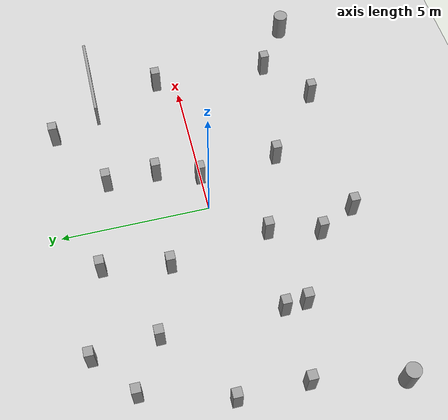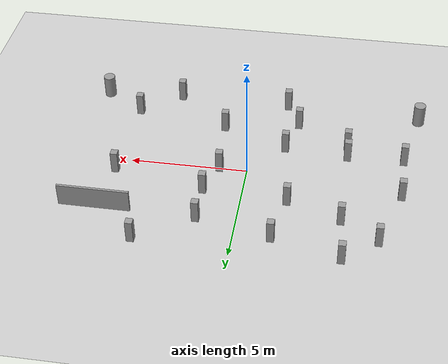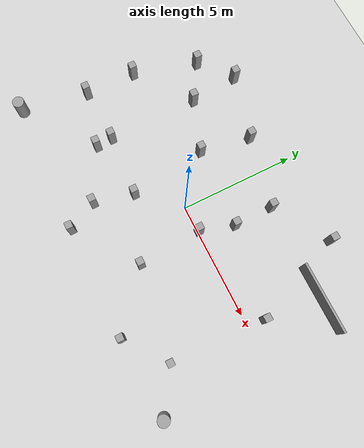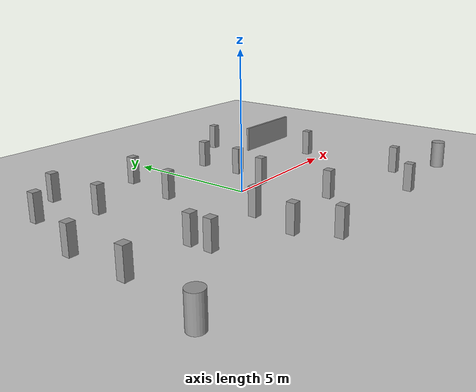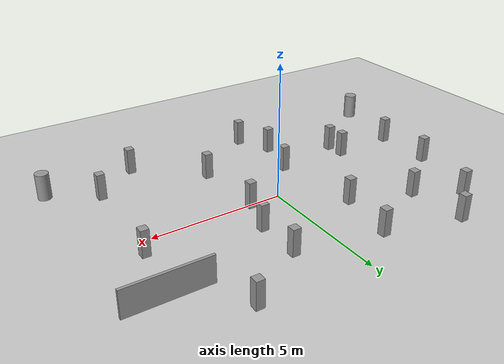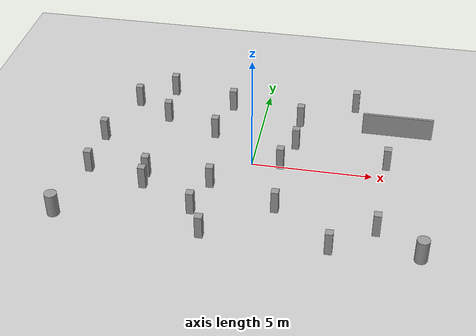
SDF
<sdf version="1.7">
 <world name="default">
  <model name="ground_plane">
   <static>1</static>
   <link name="link">
    <collision name="collision">
     <geometry><plane><normal>0 0 1</normal><size>100 100</size></plane></geometry>
     <surface>
      <contact><collide_bitmask>65535</collide_bitmask></contact>
      <friction><ode><mu>100</mu><mu2>50</mu2></ode></friction>
     </surface>
    </collision>
    <visual name="visual">
     <cast_shadows>0</cast_shadows>
     <geometry><plane><normal>0 0 1</normal><size>100 100</size></plane></geometry>
     <material>
      <script><uri>file://media/materials/scripts/gazebo.material</uri><name>Gazebo/Grey</name></script>
     </material>
    </visual>
   </link>
  </model>
  <model name="model_people">
   <link name="link_1">
    <inertial>
     <mass>1000</mass>
     <inertia><ixx>1666.67</ixx><ixy>0</ixy><ixz>0</ixz><iyy>1666.67</iyy><iyz>0</iyz><izz>1666.67</izz></inertia>
    </inertial>
    <pose>5.87565 3.29526 0 0 -0 0</pose>
    <visual name="visual">
     <geometry><box><size>3 0.1 1</size></box></geometry>
     <material>
      <lighting>1</lighting>
      <script><uri>file://media/materials/scripts/gazebo.material</uri><name>Gazebo/Grey</name></script>
      <shader type="pixel"><normal_map>__default__</normal_map></shader>
      <ambient>0.3 0.3 0.3 1</ambient>
      <diffuse>0.7 0.7 0.7 1</diffuse>
      <specular>0.01 0.01 0.01 1</specular>
      <emissive>0 0 0 1</emissive>
     </material>
    </visual>
    <collision name="collision">
     <geometry><box><size>3 0.1 1</size></box></geometry>
     <surface>
      <friction>
       <ode><mu>1</mu><mu2>1</mu2><fdir1>0 0 0</fdir1><slip1>1</slip1><slip2>1</slip2></ode>
       <torsional>
        <coefficient>1</coefficient>
        <patch_radius>0</patch_radius>
        <surface_radius>0</surface_radius>
        <use_patch_radius>1</use_patch_radius>
        <ode><slip>0</slip></ode>
       </torsional>
      </friction>
      <bounce><restitution_coefficient>0</restitution_coefficient><threshold>1e+06</threshold></bounce>
      <contact>
       <collide_without_contact>0</collide_without_contact>
       <collide_without_contact_bitmask>1</collide_without_contact_bitmask>
       <collide_bitmask>1</collide_bitmask>
       <ode>
        <soft_cfm>0</soft_cfm>
        <soft_erp>0.2</soft_erp>
        <kp>1e+13</kp>
        <kd>1</kd>
        <max_vel>0.01</max_vel>
        <min_depth>0</min_depth>
       </ode>
       <bullet>
        <split_impulse>1</split_impulse>
        <split_impulse_penetration_threshold>-0.01</split_impulse_penetration_threshold>
        <soft_cfm>0</soft_cfm>
        <soft_erp>0.2</soft_erp>
        <kp>1e+13</kp>
        <kd>1</kd>
       </bullet>
      </contact>
     </surface>
    </collision>
   </link>
   <link name="link_3">
    <inertial>
     <mass>1000</mass>
     <inertia><ixx>1666.67</ixx><ixy>0</ixy><ixz>0</ixz><iyy>1666.67</iyy><iyz>0</iyz><izz>1666.67</izz></inertia>
    </inertial>
    <pose>1.41254 -2.50014 0 0 -0 0</pose>
    <visual name="visual">
     <geometry><box><size>0.3 0.3 1</size></box></geometry>
     <material>
      <lighting>1</lighting>
      <script><uri>file://media/materials/scripts/gazebo.material</uri><name>Gazebo/Grey</name></script>
      <shader type="pixel"><normal_map>__default__</normal_map></shader>
      <ambient>0.3 0.3 0.3 1</ambient>
      <diffuse>0.7 0.7 0.7 1</diffuse>
      <specular>0.01 0.01 0.01 1</specular>
      <emissive>0 0 0 1</emissive>
     </material>
    </visual>
    <collision name="collision">
     <geometry><box><size>0.3 0.3 1</size></box></geometry>
     <surface>
      <friction>
       <ode><mu>1</mu><mu2>1</mu2><fdir1>0 0 0</fdir1><slip1>1</slip1><slip2>1</slip2></ode>
       <torsional>
        <coefficient>1</coefficient>
        <patch_radius>0</patch_radius>
        <surface_radius>0</surface_radius>
        <use_patch_radius>1</use_patch_radius>
        <ode><slip>0</slip></ode>
       </torsional>
      </friction>
      <bounce><restitution_coefficient>0</restitution_coefficient><threshold>1e+06</threshold></bounce>
      <contact>
       <collide_without_contact>0</collide_without_contact>
       <collide_without_contact_bitmask>1</collide_without_contact_bitmask>
       <collide_bitmask>1</collide_bitmask>
       <ode>
        <soft_cfm>0</soft_cfm>
        <soft_erp>0.2</soft_erp>
        <kp>1e+13</kp>
        <kd>1</kd>
        <max_vel>0.01</max_vel>
        <min_depth>0</min_depth>
       </ode>
       <bullet>
        <split_impulse>1</split_impulse>
        <split_impulse_penetration_threshold>-0.01</split_impulse_penetration_threshold>
        <soft_cfm>0</soft_cfm>
        <soft_erp>0.2</soft_erp>
        <kp>1e+13</kp>
        <kd>1</kd>
       </bullet>
      </contact>
     </surface>
    </collision>
   </link>
   <link name="link_3_clone">
    <inertial>
     <mass>1</mass>
     <inertia><ixx>1666.67</ixx><ixy>0</ixy><ixz>0</ixz><iyy>1666.67</iyy><iyz>0</iyz><izz>1666.67</izz></inertia>
    </inertial>
    <pose>5.41108 -3.14206 0 0 -0 0</pose>
    <visual name="visual">
     <geometry><box><size>0.3 0.3 1</size></box></geometry>
     <material>
      <lighting>1</lighting>
      <script><uri>file://media/materials/scripts/gazebo.material</uri><name>Gazebo/Grey</name></script>
      <shader type="pixel"><normal_map>__default__</normal_map></shader>
      <ambient>0.3 0.3 0.3 1</ambient>
      <diffuse>0.7 0.7 0.7 1</diffuse>
      <specular>0.01 0.01 0.01 1</specular>
      <emissive>0 0 0 1</emissive>
     </material>
    </visual>
    <collision name="collision">
     <geometry><box><size>0.3 0.3 1</size></box></geometry>
     <surface>
      <friction>
       <ode><mu>1</mu><mu2>1</mu2><fdir1>0 0 0</fdir1><slip1>1</slip1><slip2>1</slip2></ode>
       <torsional>
        <coefficient>1</coefficient>
        <patch_radius>0</patch_radius>
        <surface_radius>0</surface_radius>
        <use_patch_radius>1</use_patch_radius>
        <ode><slip>0</slip></ode>
       </torsional>
      </friction>
      <bounce><restitution_coefficient>0</restitution_coefficient><threshold>1e+06</threshold></bounce>
      <contact>
       <collide_without_contact>0</collide_without_contact>
       <collide_without_contact_bitmask>1</collide_without_contact_bitmask>
       <collide_bitmask>1</collide_bitmask>
       <ode>
        <soft_cfm>0</soft_cfm>
        <soft_erp>0.2</soft_erp>
        <kp>1e+13</kp>
        <kd>1</kd>
        <max_vel>0.01</max_vel>
        <min_depth>0</min_depth>
       </ode>
       <bullet>
        <split_impulse>1</split_impulse>
        <split_impulse_penetration_threshold>-0.01</split_impulse_penetration_threshold>
        <soft_cfm>0</soft_cfm>
        <soft_erp>0.2</soft_erp>
        <kp>1e+13</kp>
        <kd>1</kd>
       </bullet>
      </contact>
     </surface>
    </collision>
   </link>
   <link name="link_3_clone_0">
    <inertial>
     <mass>1000</mass>
     <inertia><ixx>1666.67</ixx><ixy>0</ixy><ixz>0</ixz><iyy>1666.67</iyy><iyz>0</iyz><izz>1666.67</izz></inertia>
    </inertial>
    <pose>1.64513 3.40116 0 0 -0 0</pose>
    <visual name="visual">
     <geometry><box><size>0.3 0.3 1</size></box></geometry>
     <material>
      <lighting>1</lighting>
      <script><uri>file://media/materials/scripts/gazebo.material</uri><name>Gazebo/Grey</name></script>
      <shader type="pixel"><normal_map>__default__</normal_map></shader>
      <ambient>0.3 0.3 0.3 1</ambient>
      <diffuse>0.7 0.7 0.7 1</diffuse>
      <specular>0.01 0.01 0.01 1</specular>
      <emissive>0 0 0 1</emissive>
     </material>
    </visual>
    <collision name="collision">
     <geometry><box><size>0.3 0.3 1</size></box></geometry>
     <surface>
      <friction>
       <ode><mu>1</mu><mu2>1</mu2><fdir1>0 0 0</fdir1><slip1>1</slip1><slip2>1</slip2></ode>
       <torsional>
        <coefficient>1</coefficient>
        <patch_radius>0</patch_radius>
        <surface_radius>0</surface_radius>
        <use_patch_radius>1</use_patch_radius>
        <ode><slip>0</slip></ode>
       </torsional>
      </friction>
      <bounce><restitution_coefficient>0</restitution_coefficient><threshold>1e+06</threshold></bounce>
      <contact>
       <collide_without_contact>0</collide_without_contact>
       <collide_without_contact_bitmask>1</collide_without_contact_bitmask>
       <collide_bitmask>1</collide_bitmask>
       <ode>
        <soft_cfm>0</soft_cfm>
        <soft_erp>0.2</soft_erp>
        <kp>1e+13</kp>
        <kd>1</kd>
        <max_vel>0.01</max_vel>
        <min_depth>0</min_depth>
       </ode>
       <bullet>
        <split_impulse>1</split_impulse>
        <split_impulse_penetration_threshold>-0.01</split_impulse_penetration_threshold>
        <soft_cfm>0</soft_cfm>
        <soft_erp>0.2</soft_erp>
        <kp>1e+13</kp>
        <kd>1</kd>
       </bullet>
      </contact>
     </surface>
    </collision>
   </link>
   <link name="link_3_clone_1">
    <inertial>
     <mass>1000</mass>
     <inertia><ixx>1666.67</ixx><ixy>0</ixy><ixz>0</ixz><iyy>1666.67</iyy><iyz>0</iyz><izz>1666.67</izz></inertia>
    </inertial>
    <pose>-1.40268 -1.44307 0 0 -0 0</pose>
    <visual name="visual">
     <geometry><box><size>0.3 0.3 1</size></box></geometry>
     <material>
      <lighting>1</lighting>
      <script><uri>file://media/materials/scripts/gazebo.material</uri><name>Gazebo/Grey</name></script>
      <shader type="pixel"><normal_map>__default__</normal_map></shader>
      <ambient>0.3 0.3 0.3 1</ambient>
      <diffuse>0.7 0.7 0.7 1</diffuse>
      <specular>0.01 0.01 0.01 1</specular>
      <emissive>0 0 0 1</emissive>
     </material>
    </visual>
    <collision name="collision">
     <geometry><box><size>0.3 0.3 1</size></box></geometry>
     <surface>
      <friction>
       <ode><mu>1</mu><mu2>1</mu2><fdir1>0 0 0</fdir1><slip1>1</slip1><slip2>1</slip2></ode>
       <torsional>
        <coefficient>1</coefficient>
        <patch_radius>0</patch_radius>
        <surface_radius>0</surface_radius>
        <use_patch_radius>1</use_patch_radius>
        <ode><slip>0</slip></ode>
       </torsional>
      </friction>
      <bounce><restitution_coefficient>0</restitution_coefficient><threshold>1e+06</threshold></bounce>
      <contact>
       <collide_without_contact>0</collide_without_contact>
       <collide_without_contact_bitmask>1</collide_without_contact_bitmask>
       <collide_bitmask>1</collide_bitmask>
       <ode>
        <soft_cfm>0</soft_cfm>
        <soft_erp>0.2</soft_erp>
        <kp>1e+13</kp>
        <kd>1</kd>
        <max_vel>0.01</max_vel>
        <min_depth>0</min_depth>
       </ode>
       <bullet>
        <split_impulse>1</split_impulse>
        <split_impulse_penetration_threshold>-0.01</split_impulse_penetration_threshold>
        <soft_cfm>0</soft_cfm>
        <soft_erp>0.2</soft_erp>
        <kp>1e+13</kp>
        <kd>1</kd>
       </bullet>
      </contact>
     </surface>
    </collision>
   </link>
   <link name="link_3_clone_2">
    <inertial>
     <mass>1000</mass>
     <inertia><ixx>1666.67</ixx><ixy>0</ixy><ixz>0</ixz><iyy>1666.67</iyy><iyz>0</iyz><izz>1666.67</izz></inertia>
    </inertial>
    <pose>-1.8757 1.90285 0 0 -0 0</pose>
    <visual name="visual">
     <geometry><box><size>0.3 0.3 1</size></box></geometry>
     <material>
      <lighting>1</lighting>
      <script><uri>file://media/materials/scripts/gazebo.material</uri><name>Gazebo/Grey</name></script>
      <shader type="pixel"><normal_map>__default__</normal_map></shader>
      <ambient>0.3 0.3 0.3 1</ambient>
      <diffuse>0.7 0.7 0.7 1</diffuse>
      <specular>0.01 0.01 0.01 1</specular>
      <emissive>0 0 0 1</emissive>
     </material>
    </visual>
    <collision name="collision">
     <geometry><box><size>0.3 0.3 1</size></box></geometry>
     <surface>
      <friction>
       <ode><mu>1</mu><mu2>1</mu2><fdir1>0 0 0</fdir1><slip1>1</slip1><slip2>1</slip2></ode>
       <torsional>
        <coefficient>1</coefficient>
        <patch_radius>0</patch_radius>
        <surface_radius>0</surface_radius>
        <use_patch_radius>1</use_patch_radius>
        <ode><slip>0</slip></ode>
       </torsional>
      </friction>
      <bounce><restitution_coefficient>0</restitution_coefficient><threshold>1e+06</threshold></bounce>
      <contact>
       <collide_without_contact>0</collide_without_contact>
       <collide_without_contact_bitmask>1</collide_without_contact_bitmask>
       <collide_bitmask>1</collide_bitmask>
       <ode>
        <soft_cfm>0</soft_cfm>
        <soft_erp>0.2</soft_erp>
        <kp>1e+13</kp>
        <kd>1</kd>
        <max_vel>0.01</max_vel>
        <min_depth>0</min_depth>
       </ode>
       <bullet>
        <split_impulse>1</split_impulse>
        <split_impulse_penetration_threshold>-0.01</split_impulse_penetration_threshold>
        <soft_cfm>0</soft_cfm>
        <soft_erp>0.2</soft_erp>
        <kp>1e+13</kp>
        <kd>1</kd>
       </bullet>
      </contact>
     </surface>
    </collision>
   </link>
   <link name="link_3_clone_2_clone">
    <inertial>
     <mass>1000</mass>
     <inertia><ixx>1666.67</ixx><ixy>0</ixy><ixz>0</ixz><iyy>1666.67</iyy><iyz>0</iyz><izz>1666.67</izz></inertia>
    </inertial>
    <pose>-4.3502 4.85297 0 0 -0 0</pose>
    <visual name="visual">
     <geometry><box><size>0.3 0.3 1</size></box></geometry>
     <material>
      <lighting>1</lighting>
      <script><uri>file://media/materials/scripts/gazebo.material</uri><name>Gazebo/Grey</name></script>
      <shader type="pixel"><normal_map>__default__</normal_map></shader>
      <ambient>0.3 0.3 0.3 1</ambient>
      <diffuse>0.7 0.7 0.7 1</diffuse>
      <specular>0.01 0.01 0.01 1</specular>
      <emissive>0 0 0 1</emissive>
     </material>
    </visual>
    <collision name="collision">
     <geometry><box><size>0.3 0.3 1</size></box></geometry>
     <surface>
      <friction>
       <ode><mu>1</mu><mu2>1</mu2><fdir1>0 0 0</fdir1><slip1>1</slip1><slip2>1</slip2></ode>
       <torsional>
        <coefficient>1</coefficient>
        <patch_radius>0</patch_radius>
        <surface_radius>0</surface_radius>
        <use_patch_radius>1</use_patch_radius>
        <ode><slip>0</slip></ode>
       </torsional>
      </friction>
      <bounce><restitution_coefficient>0</restitution_coefficient><threshold>1e+06</threshold></bounce>
      <contact>
       <collide_without_contact>0</collide_without_contact>
       <collide_without_contact_bitmask>1</collide_without_contact_bitmask>
       <collide_bitmask>1</collide_bitmask>
       <ode>
        <soft_cfm>0</soft_cfm>
        <soft_erp>0.2</soft_erp>
        <kp>1e+13</kp>
        <kd>1</kd>
        <max_vel>0.01</max_vel>
        <min_depth>0</min_depth>
       </ode>
       <bullet>
        <split_impulse>1</split_impulse>
        <split_impulse_penetration_threshold>-0.01</split_impulse_penetration_threshold>
        <soft_cfm>0</soft_cfm>
        <soft_erp>0.2</soft_erp>
        <kp>1e+13</kp>
        <kd>1</kd>
       </bullet>
      </contact>
     </surface>
    </collision>
   </link>
   <link name="link_3_clone_2_clone_0">
    <inertial>
     <mass>1000</mass>
     <inertia><ixx>1666.67</ixx><ixy>0</ixy><ixz>0</ixz><iyy>1666.67</iyy><iyz>0</iyz><izz>1666.67</izz></inertia>
    </inertial>
    <pose>-4.06604 -1.95479 0 0 -0 0</pose>
    <visual name="visual">
     <geometry><box><size>0.3 0.3 1</size></box></geometry>
     <material>
      <lighting>1</lighting>
      <script><uri>file://media/materials/scripts/gazebo.material</uri><name>Gazebo/Grey</name></script>
      <shader type="pixel"><normal_map>__default__</normal_map></shader>
      <ambient>0.3 0.3 0.3 1</ambient>
      <diffuse>0.7 0.7 0.7 1</diffuse>
      <specular>0.01 0.01 0.01 1</specular>
      <emissive>0 0 0 1</emissive>
     </material>
    </visual>
    <collision name="collision">
     <geometry><box><size>0.3 0.3 1</size></box></geometry>
     <surface>
      <friction>
       <ode><mu>1</mu><mu2>1</mu2><fdir1>0 0 0</fdir1><slip1>1</slip1><slip2>1</slip2></ode>
       <torsional>
        <coefficient>1</coefficient>
        <patch_radius>0</patch_radius>
        <surface_radius>0</surface_radius>
        <use_patch_radius>1</use_patch_radius>
        <ode><slip>0</slip></ode>
       </torsional>
      </friction>
      <bounce><restitution_coefficient>0</restitution_coefficient><threshold>1e+06</threshold></bounce>
      <contact>
       <collide_without_contact>0</collide_without_contact>
       <collide_without_contact_bitmask>1</collide_without_contact_bitmask>
       <collide_bitmask>1</collide_bitmask>
       <ode>
        <soft_cfm>0</soft_cfm>
        <soft_erp>0.2</soft_erp>
        <kp>1e+13</kp>
        <kd>1</kd>
        <max_vel>0.01</max_vel>
        <min_depth>0</min_depth>
       </ode>
       <bullet>
        <split_impulse>1</split_impulse>
        <split_impulse_penetration_threshold>-0.01</split_impulse_penetration_threshold>
        <soft_cfm>0</soft_cfm>
        <soft_erp>0.2</soft_erp>
        <kp>1e+13</kp>
        <kd>1</kd>
       </bullet>
      </contact>
     </surface>
    </collision>
   </link>
   <link name="link_3_clone_2_clone_1">
    <inertial>
     <mass>1000</mass>
     <inertia><ixx>1666.67</ixx><ixy>0</ixy><ixz>0</ixz><iyy>1666.67</iyy><iyz>0</iyz><izz>1666.67</izz></inertia>
    </inertial>
    <pose>-5.73259 3.6978 0 0 -0 0</pose>
    <visual name="visual">
     <geometry><box><size>0.3 0.3 1</size></box></geometry>
     <material>
      <lighting>1</lighting>
      <script><uri>file://media/materials/scripts/gazebo.material</uri><name>Gazebo/Grey</name></script>
      <shader type="pixel"><normal_map>__default__</normal_map></shader>
      <ambient>0.3 0.3 0.3 1</ambient>
      <diffuse>0.7 0.7 0.7 1</diffuse>
      <specular>0.01 0.01 0.01 1</specular>
      <emissive>0 0 0 1</emissive>
     </material>
    </visual>
    <collision name="collision">
     <geometry><box><size>0.3 0.3 1</size></box></geometry>
     <surface>
      <friction>
       <ode><mu>1</mu><mu2>1</mu2><fdir1>0 0 0</fdir1><slip1>1</slip1><slip2>1</slip2></ode>
       <torsional>
        <coefficient>1</coefficient>
        <patch_radius>0</patch_radius>
        <surface_radius>0</surface_radius>
        <use_patch_radius>1</use_patch_radius>
        <ode><slip>0</slip></ode>
       </torsional>
      </friction>
      <bounce><restitution_coefficient>0</restitution_coefficient><threshold>1e+06</threshold></bounce>
      <contact>
       <collide_without_contact>0</collide_without_contact>
       <collide_without_contact_bitmask>1</collide_without_contact_bitmask>
       <collide_bitmask>1</collide_bitmask>
       <ode>
        <soft_cfm>0</soft_cfm>
        <soft_erp>0.2</soft_erp>
        <kp>1e+13</kp>
        <kd>1</kd>
        <max_vel>0.01</max_vel>
        <min_depth>0</min_depth>
       </ode>
       <bullet>
        <split_impulse>1</split_impulse>
        <split_impulse_penetration_threshold>-0.01</split_impulse_penetration_threshold>
        <soft_cfm>0</soft_cfm>
        <soft_erp>0.2</soft_erp>
        <kp>1e+13</kp>
        <kd>1</kd>
       </bullet>
      </contact>
     </surface>
    </collision>
   </link>
   <link name="link_3_clone_2_clone_2">
    <inertial>
     <mass>1000</mass>
     <inertia><ixx>1666.67</ixx><ixy>0</ixy><ixz>0</ixz><iyy>1666.67</iyy><iyz>0</iyz><izz>1666.67</izz></inertia>
    </inertial>
    <pose>-6.53007 -1.31119 0 0 -0 0</pose>
    <visual name="visual">
     <geometry><box><size>0.3 0.3 1</size></box></geometry>
     <material>
      <lighting>1</lighting>
      <script><uri>file://media/materials/scripts/gazebo.material</uri><name>Gazebo/Grey</name></script>
      <shader type="pixel"><normal_map>__default__</normal_map></shader>
      <ambient>0.3 0.3 0.3 1</ambient>
      <diffuse>0.7 0.7 0.7 1</diffuse>
      <specular>0.01 0.01 0.01 1</specular>
      <emissive>0 0 0 1</emissive>
     </material>
    </visual>
    <collision name="collision">
     <geometry><box><size>0.3 0.3 1</size></box></geometry>
     <surface>
      <friction>
       <ode><mu>1</mu><mu2>1</mu2><fdir1>0 0 0</fdir1><slip1>1</slip1><slip2>1</slip2></ode>
       <torsional>
        <coefficient>1</coefficient>
        <patch_radius>0</patch_radius>
        <surface_radius>0</surface_radius>
        <use_patch_radius>1</use_patch_radius>
        <ode><slip>0</slip></ode>
       </torsional>
      </friction>
      <bounce><restitution_coefficient>0</restitution_coefficient><threshold>1e+06</threshold></bounce>
      <contact>
       <collide_without_contact>0</collide_without_contact>
       <collide_without_contact_bitmask>1</collide_without_contact_bitmask>
       <collide_bitmask>1</collide_bitmask>
       <ode>
        <soft_cfm>0</soft_cfm>
        <soft_erp>0.2</soft_erp>
        <kp>1e+13</kp>
        <kd>1</kd>
        <max_vel>0.01</max_vel>
        <min_depth>0</min_depth>
       </ode>
       <bullet>
        <split_impulse>1</split_impulse>
        <split_impulse_penetration_threshold>-0.01</split_impulse_penetration_threshold>
        <soft_cfm>0</soft_cfm>
        <soft_erp>0.2</soft_erp>
        <kp>1e+13</kp>
        <kd>1</kd>
       </bullet>
      </contact>
     </surface>
    </collision>
   </link>
   <link name="link_3_clone_2_clone_3">
    <inertial>
     <mass>1000</mass>
     <inertia><ixx>1666.67</ixx><ixy>0</ixy><ixz>0</ixz><iyy>1666.67</iyy><iyz>0</iyz><izz>1666.67</izz></inertia>
    </inertial>
    <pose>-1.18011 -4.42479 0 0 -0 0</pose>
    <visual name="visual">
     <geometry><box><size>0.3 0.3 1</size></box></geometry>
     <material>
      <lighting>1</lighting>
      <script><uri>file://media/materials/scripts/gazebo.material</uri><name>Gazebo/Grey</name></script>
      <shader type="pixel"><normal_map>__default__</normal_map></shader>
      <ambient>0.3 0.3 0.3 1</ambient>
      <diffuse>0.7 0.7 0.7 1</diffuse>
      <specular>0.01 0.01 0.01 1</specular>
      <emissive>0 0 0 1</emissive>
     </material>
    </visual>
    <collision name="collision">
     <geometry><box><size>0.3 0.3 1</size></box></geometry>
     <surface>
      <friction>
       <ode><mu>1</mu><mu2>1</mu2><fdir1>0 0 0</fdir1><slip1>1</slip1><slip2>1</slip2></ode>
       <torsional>
        <coefficient>1</coefficient>
        <patch_radius>0</patch_radius>
        <surface_radius>0</surface_radius>
        <use_patch_radius>1</use_patch_radius>
        <ode><slip>0</slip></ode>
       </torsional>
      </friction>
      <bounce><restitution_coefficient>0</restitution_coefficient><threshold>1e+06</threshold></bounce>
      <contact>
       <collide_without_contact>0</collide_without_contact>
       <collide_without_contact_bitmask>1</collide_without_contact_bitmask>
       <collide_bitmask>1</collide_bitmask>
       <ode>
        <soft_cfm>0</soft_cfm>
        <soft_erp>0.2</soft_erp>
        <kp>1e+13</kp>
        <kd>1</kd>
        <max_vel>0.01</max_vel>
        <min_depth>0</min_depth>
       </ode>
       <bullet>
        <split_impulse>1</split_impulse>
        <split_impulse_penetration_threshold>-0.01</split_impulse_penetration_threshold>
        <soft_cfm>0</soft_cfm>
        <soft_erp>0.2</soft_erp>
        <kp>1e+13</kp>
        <kd>1</kd>
       </bullet>
      </contact>
     </surface>
    </collision>
   </link>
   <link name="link_3_clone_3">
    <inertial>
     <mass>1000</mass>
     <inertia><ixx>1666.67</ixx><ixy>0</ixy><ixz>0</ixz><iyy>1666.67</iyy><iyz>0</iyz><izz>1666.67</izz></inertia>
    </inertial>
    <pose>1.21145 0.247128 0 0 -0 0</pose>
    <visual name="visual">
     <geometry><box><size>0.3 0.3 1</size></box></geometry>
     <material>
      <lighting>1</lighting>
      <script><uri>file://media/materials/scripts/gazebo.material</uri><name>Gazebo/Grey</name></script>
      <shader type="pixel"><normal_map>__default__</normal_map></shader>
      <ambient>0.3 0.3 0.3 1</ambient>
      <diffuse>0.7 0.7 0.7 1</diffuse>
      <specular>0.01 0.01 0.01 1</specular>
      <emissive>0 0 0 1</emissive>
     </material>
    </visual>
    <collision name="collision">
     <geometry><box><size>0.3 0.3 1</size></box></geometry>
     <surface>
      <friction>
       <ode><mu>1</mu><mu2>1</mu2><fdir1>0 0 0</fdir1><slip1>1</slip1><slip2>1</slip2></ode>
       <torsional>
        <coefficient>1</coefficient>
        <patch_radius>0</patch_radius>
        <surface_radius>0</surface_radius>
        <use_patch_radius>1</use_patch_radius>
        <ode><slip>0</slip></ode>
       </torsional>
      </friction>
      <bounce><restitution_coefficient>0</restitution_coefficient><threshold>1e+06</threshold></bounce>
      <contact>
       <collide_without_contact>0</collide_without_contact>
       <collide_without_contact_bitmask>1</collide_without_contact_bitmask>
       <collide_bitmask>1</collide_bitmask>
       <ode>
        <soft_cfm>0</soft_cfm>
        <soft_erp>0.2</soft_erp>
        <kp>1e+13</kp>
        <kd>1</kd>
        <max_vel>0.01</max_vel>
        <min_depth>0</min_depth>
       </ode>
       <bullet>
        <split_impulse>1</split_impulse>
        <split_impulse_penetration_threshold>-0.01</split_impulse_penetration_threshold>
        <soft_cfm>0</soft_cfm>
        <soft_erp>0.2</soft_erp>
        <kp>1e+13</kp>
        <kd>1</kd>
       </bullet>
      </contact>
     </surface>
    </collision>
   </link>
   <link name="link_3_clone_4">
    <inertial>
     <mass>1000</mass>
     <inertia><ixx>1666.67</ixx><ixy>0</ixy><ixz>0</ixz><iyy>1666.67</iyy><iyz>0</iyz><izz>1666.67</izz></inertia>
    </inertial>
    <pose>5.56661 0.940043 0 0 -0 0</pose>
    <visual name="visual">
     <geometry><box><size>0.3 0.3 1</size></box></geometry>
     <material>
      <lighting>1</lighting>
      <script><uri>file://media/materials/scripts/gazebo.material</uri><name>Gazebo/Grey</name></script>
      <shader type="pixel"><normal_map>__default__</normal_map></shader>
      <ambient>0.3 0.3 0.3 1</ambient>
      <diffuse>0.7 0.7 0.7 1</diffuse>
      <specular>0.01 0.01 0.01 1</specular>
      <emissive>0 0 0 1</emissive>
     </material>
    </visual>
    <collision name="collision">
     <geometry><box><size>0.3 0.3 1</size></box></geometry>
     <surface>
      <friction>
       <ode><mu>1</mu><mu2>1</mu2><fdir1>0 0 0</fdir1><slip1>1</slip1><slip2>1</slip2></ode>
       <torsional>
        <coefficient>1</coefficient>
        <patch_radius>0</patch_radius>
        <surface_radius>0</surface_radius>
        <use_patch_radius>1</use_patch_radius>
        <ode><slip>0</slip></ode>
       </torsional>
      </friction>
      <bounce><restitution_coefficient>0</restitution_coefficient><threshold>1e+06</threshold></bounce>
      <contact>
       <collide_without_contact>0</collide_without_contact>
       <collide_without_contact_bitmask>1</collide_without_contact_bitmask>
       <collide_bitmask>1</collide_bitmask>
       <ode>
        <soft_cfm>0</soft_cfm>
        <soft_erp>0.2</soft_erp>
        <kp>1e+13</kp>
        <kd>1</kd>
        <max_vel>0.01</max_vel>
        <min_depth>0</min_depth>
       </ode>
       <bullet>
        <split_impulse>1</split_impulse>
        <split_impulse_penetration_threshold>-0.01</split_impulse_penetration_threshold>
        <soft_cfm>0</soft_cfm>
        <soft_erp>0.2</soft_erp>
        <kp>1e+13</kp>
        <kd>1</kd>
       </bullet>
      </contact>
     </surface>
    </collision>
   </link>
   <link name="link_3_clone_5">
    <inertial>
     <mass>1000</mass>
     <inertia><ixx>1666.67</ixx><ixy>0</ixy><ixz>0</ixz><iyy>1666.67</iyy><iyz>0</iyz><izz>1666.67</izz></inertia>
    </inertial>
    <pose>3.96151 4.89158 0 0 -0 0</pose>
    <visual name="visual">
     <geometry><box><size>0.3 0.3 1</size></box></geometry>
     <material>
      <lighting>1</lighting>
      <script><uri>file://media/materials/scripts/gazebo.material</uri><name>Gazebo/Grey</name></script>
      <shader type="pixel"><normal_map>__default__</normal_map></shader>
      <ambient>0.3 0.3 0.3 1</ambient>
      <diffuse>0.7 0.7 0.7 1</diffuse>
      <specular>0.01 0.01 0.01 1</specular>
      <emissive>0 0 0 1</emissive>
     </material>
    </visual>
    <collision name="collision">
     <geometry><box><size>0.3 0.3 1</size></box></geometry>
     <surface>
      <friction>
       <ode><mu>1</mu><mu2>1</mu2><fdir1>0 0 0</fdir1><slip1>1</slip1><slip2>1</slip2></ode>
       <torsional>
        <coefficient>1</coefficient>
        <patch_radius>0</patch_radius>
        <surface_radius>0</surface_radius>
        <use_patch_radius>1</use_patch_radius>
        <ode><slip>0</slip></ode>
       </torsional>
      </friction>
      <bounce><restitution_coefficient>0</restitution_coefficient><threshold>1e+06</threshold></bounce>
      <contact>
       <collide_without_contact>0</collide_without_contact>
       <collide_without_contact_bitmask>1</collide_without_contact_bitmask>
       <collide_bitmask>1</collide_bitmask>
       <ode>
        <soft_cfm>0</soft_cfm>
        <soft_erp>0.2</soft_erp>
        <kp>1e+13</kp>
        <kd>1</kd>
        <max_vel>0.01</max_vel>
        <min_depth>0</min_depth>
       </ode>
       <bullet>
        <split_impulse>1</split_impulse>
        <split_impulse_penetration_threshold>-0.01</split_impulse_penetration_threshold>
        <soft_cfm>0</soft_cfm>
        <soft_erp>0.2</soft_erp>
        <kp>1e+13</kp>
        <kd>1</kd>
       </bullet>
      </contact>
     </surface>
    </collision>
   </link>
   <link name="link_4">
    <inertial>
     <mass>1000</mass>
     <inertia><ixx>1458.33</ixx><ixy>0</ixy><ixz>0</ixz><iyy>1458.33</iyy><iyz>0</iyz><izz>1250</izz></inertia>
    </inertial>
    <pose>-7.07269 -4.18386 0 0 -0 0</pose>
    <visual name="visual">
     <geometry><cylinder><radius>0.25</radius><length>1</length></cylinder></geometry>
     <material>
      <lighting>1</lighting>
      <script><uri>file://media/materials/scripts/gazebo.material</uri><name>Gazebo/Grey</name></script>
      <shader type="pixel"><normal_map>__default__</normal_map></shader>
      <ambient>0.3 0.3 0.3 1</ambient>
      <diffuse>0.7 0.7 0.7 1</diffuse>
      <specular>0.01 0.01 0.01 1</specular>
      <emissive>0 0 0 1</emissive>
     </material>
    </visual>
    <collision name="collision">
     <geometry><cylinder><radius>0.25</radius><length>1</length></cylinder></geometry>
     <surface>
      <friction>
       <ode><mu>1</mu><mu2>1</mu2><fdir1>0 0 0</fdir1><slip1>1</slip1><slip2>1</slip2></ode>
       <torsional>
        <coefficient>1</coefficient>
        <patch_radius>0</patch_radius>
        <surface_radius>0</surface_radius>
        <use_patch_radius>1</use_patch_radius>
        <ode><slip>0</slip></ode>
       </torsional>
      </friction>
      <bounce><restitution_coefficient>0</restitution_coefficient><threshold>1e+06</threshold></bounce>
      <contact>
       <collide_without_contact>0</collide_without_contact>
       <collide_without_contact_bitmask>1</collide_without_contact_bitmask>
       <collide_bitmask>1</collide_bitmask>
       <ode>
        <soft_cfm>0</soft_cfm>
        <soft_erp>0.2</soft_erp>
        <kp>1e+13</kp>
        <kd>1</kd>
        <max_vel>0.01</max_vel>
        <min_depth>0</min_depth>
       </ode>
       <bullet>
        <split_impulse>1</split_impulse>
        <split_impulse_penetration_threshold>-0.01</split_impulse_penetration_threshold>
        <soft_cfm>0</soft_cfm>
        <soft_erp>0.2</soft_erp>
        <kp>1e+13</kp>
        <kd>1</kd>
       </bullet>
      </contact>
     </surface>
    </collision>
   </link>
   <link name="link_4_clone">
    <inertial>
     <mass>1000</mass>
     <inertia><ixx>1458.33</ixx><ixy>0</ixy><ixz>0</ixz><iyy>1458.33</iyy><iyz>0</iyz><izz>1250</izz></inertia>
    </inertial>
    <pose>7.12611 -4.26889 0 0 -0 0</pose>
    <visual name="visual">
     <geometry><cylinder><radius>0.25</radius><length>1</length></cylinder></geometry>
     <material>
      <lighting>1</lighting>
      <script><uri>file://media/materials/scripts/gazebo.material</uri><name>Gazebo/Grey</name></script>
      <shader type="pixel"><normal_map>__default__</normal_map></shader>
      <ambient>0.3 0.3 0.3 1</ambient>
      <diffuse>0.7 0.7 0.7 1</diffuse>
      <specular>0.01 0.01 0.01 1</specular>
      <emissive>0 0 0 1</emissive>
     </material>
    </visual>
    <collision name="collision">
     <geometry><cylinder><radius>0.25</radius><length>1</length></cylinder></geometry>
     <surface>
      <friction>
       <ode><mu>1</mu><mu2>1</mu2><fdir1>0 0 0</fdir1><slip1>1</slip1><slip2>1</slip2></ode>
       <torsional>
        <coefficient>1</coefficient>
        <patch_radius>0</patch_radius>
        <surface_radius>0</surface_radius>
        <use_patch_radius>1</use_patch_radius>
        <ode><slip>0</slip></ode>
       </torsional>
      </friction>
      <bounce><restitution_coefficient>0</restitution_coefficient><threshold>1e+06</threshold></bounce>
      <contact>
       <collide_without_contact>0</collide_without_contact>
       <collide_without_contact_bitmask>1</collide_without_contact_bitmask>
       <collide_bitmask>1</collide_bitmask>
       <ode>
        <soft_cfm>0</soft_cfm>
        <soft_erp>0.2</soft_erp>
        <kp>1e+13</kp>
        <kd>1</kd>
        <max_vel>0.01</max_vel>
        <min_depth>0</min_depth>
       </ode>
       <bullet>
        <split_impulse>1</split_impulse>
        <split_impulse_penetration_threshold>-0.01</split_impulse_penetration_threshold>
        <soft_cfm>0</soft_cfm>
        <soft_erp>0.2</soft_erp>
        <kp>1e+13</kp>
        <kd>1</kd>
       </bullet>
      </contact>
     </surface>
    </collision>
   </link>
   <static>0</static>
   <pose>-0.035241 -0.211837 0.499129 3e-06 -0.000117 -0.002565</pose>
  </model>
  <model name="model_people_2">
   <link name="link_0">
    <inertial>
     <mass>1000</mass>
     <inertia><ixx>1666.67</ixx><ixy>0</ixy><ixz>0</ixz><iyy>1666.67</iyy><iyz>0</iyz><izz>1666.67</izz></inertia>
    </inertial>
    <pose>5.53021 -4.55193 0 0 -0 0</pose>
    <visual name="visual">
     <geometry><box><size>0.3 0.3 1</size></box></geometry>
     <material>
      <lighting>1</lighting>
      <script><uri>file://media/materials/scripts/gazebo.material</uri><name>Gazebo/Grey</name></script>
      <shader type="pixel"><normal_map>__default__</normal_map></shader>
      <ambient>0.3 0.3 0.3 1</ambient>
      <diffuse>0.7 0.7 0.7 1</diffuse>
      <specular>0.01 0.01 0.01 1</specular>
      <emissive>0 0 0 1</emissive>
     </material>
    </visual>
    <collision name="collision">
     <geometry><box><size>0.3 0.3 1</size></box></geometry>
     <surface>
      <friction>
       <ode><mu>1</mu><mu2>1</mu2><fdir1>0 0 0</fdir1><slip1>1</slip1><slip2>1</slip2></ode>
       <torsional>
        <coefficient>1</coefficient>
        <patch_radius>0</patch_radius>
        <surface_radius>0</surface_radius>
        <use_patch_radius>1</use_patch_radius>
        <ode><slip>0</slip></ode>
       </torsional>
      </friction>
      <bounce><restitution_coefficient>0</restitution_coefficient><threshold>1e+06</threshold></bounce>
      <contact>
       <collide_without_contact>0</collide_without_contact>
       <collide_without_contact_bitmask>1</collide_without_contact_bitmask>
       <collide_bitmask>1</collide_bitmask>
       <ode>
        <soft_cfm>0</soft_cfm>
        <soft_erp>0.2</soft_erp>
        <kp>1e+13</kp>
        <kd>1</kd>
        <max_vel>0.01</max_vel>
        <min_depth>0</min_depth>
       </ode>
       <bullet>
        <split_impulse>1</split_impulse>
        <split_impulse_penetration_threshold>-0.01</split_impulse_penetration_threshold>
        <soft_cfm>0</soft_cfm>
        <soft_erp>0.2</soft_erp>
        <kp>1e+13</kp>
        <kd>1</kd>
       </bullet>
      </contact>
     </surface>
    </collision>
   </link>
   <link name="link_0_clone">
    <inertial>
     <mass>1000</mass>
     <inertia><ixx>1666.67</ixx><ixy>0</ixy><ixz>0</ixz><iyy>1666.67</iyy><iyz>0</iyz><izz>1666.67</izz></inertia>
    </inertial>
    <pose>-0.002833 -3.23366 0 0 -0 0</pose>
    <visual name="visual">
     <geometry><box><size>0.3 0.3 1</size></box></geometry>
     <material>
      <lighting>1</lighting>
      <script><uri>file://media/materials/scripts/gazebo.material</uri><name>Gazebo/Grey</name></script>
      <shader type="pixel"><normal_map>__default__</normal_map></shader>
      <ambient>0.3 0.3 0.3 1</ambient>
      <diffuse>0.7 0.7 0.7 1</diffuse>
      <specular>0.01 0.01 0.01 1</specular>
      <emissive>0 0 0 1</emissive>
     </material>
    </visual>
    <collision name="collision">
     <geometry><box><size>0.3 0.3 1</size></box></geometry>
     <surface>
      <friction>
       <ode><mu>1</mu><mu2>1</mu2><fdir1>0 0 0</fdir1><slip1>1</slip1><slip2>1</slip2></ode>
       <torsional>
        <coefficient>1</coefficient>
        <patch_radius>0</patch_radius>
        <surface_radius>0</surface_radius>
        <use_patch_radius>1</use_patch_radius>
        <ode><slip>0</slip></ode>
       </torsional>
      </friction>
      <bounce><restitution_coefficient>0</restitution_coefficient><threshold>1e+06</threshold></bounce>
      <contact>
       <collide_without_contact>0</collide_without_contact>
       <collide_without_contact_bitmask>1</collide_without_contact_bitmask>
       <collide_bitmask>1</collide_bitmask>
       <ode>
        <soft_cfm>0</soft_cfm>
        <soft_erp>0.2</soft_erp>
        <kp>1e+13</kp>
        <kd>1</kd>
        <max_vel>0.01</max_vel>
        <min_depth>0</min_depth>
       </ode>
       <bullet>
        <split_impulse>1</split_impulse>
        <split_impulse_penetration_threshold>-0.01</split_impulse_penetration_threshold>
        <soft_cfm>0</soft_cfm>
        <soft_erp>0.2</soft_erp>
        <kp>1e+13</kp>
        <kd>1</kd>
       </bullet>
      </contact>
     </surface>
    </collision>
   </link>
   <link name="link_0_clone_0">
    <inertial>
     <mass>1000</mass>
     <inertia><ixx>1666.67</ixx><ixy>0</ixy><ixz>0</ixz><iyy>1666.67</iyy><iyz>0</iyz><izz>1666.67</izz></inertia>
    </inertial>
    <pose>0.327599 4.0106 0 0 -0 0</pose>
    <visual name="visual">
     <geometry><box><size>0.3 0.3 1</size></box></geometry>
     <material>
      <lighting>1</lighting>
      <script><uri>file://media/materials/scripts/gazebo.material</uri><name>Gazebo/Grey</name></script>
      <shader type="pixel"><normal_map>__default__</normal_map></shader>
      <ambient>0.3 0.3 0.3 1</ambient>
      <diffuse>0.7 0.7 0.7 1</diffuse>
      <specular>0.01 0.01 0.01 1</specular>
      <emissive>0 0 0 1</emissive>
     </material>
    </visual>
    <collision name="collision">
     <geometry><box><size>0.3 0.3 1</size></box></geometry>
     <surface>
      <friction>
       <ode><mu>1</mu><mu2>1</mu2><fdir1>0 0 0</fdir1><slip1>1</slip1><slip2>1</slip2></ode>
       <torsional>
        <coefficient>1</coefficient>
        <patch_radius>0</patch_radius>
        <surface_radius>0</surface_radius>
        <use_patch_radius>1</use_patch_radius>
        <ode><slip>0</slip></ode>
       </torsional>
      </friction>
      <bounce><restitution_coefficient>0</restitution_coefficient><threshold>1e+06</threshold></bounce>
      <contact>
       <collide_without_contact>0</collide_without_contact>
       <collide_without_contact_bitmask>1</collide_without_contact_bitmask>
       <collide_bitmask>1</collide_bitmask>
       <ode>
        <soft_cfm>0</soft_cfm>
        <soft_erp>0.2</soft_erp>
        <kp>1e+13</kp>
        <kd>1</kd>
        <max_vel>0.01</max_vel>
        <min_depth>0</min_depth>
       </ode>
       <bullet>
        <split_impulse>1</split_impulse>
        <split_impulse_penetration_threshold>-0.01</split_impulse_penetration_threshold>
        <soft_cfm>0</soft_cfm>
        <soft_erp>0.2</soft_erp>
        <kp>1e+13</kp>
        <kd>1</kd>
       </bullet>
      </contact>
     </surface>
    </collision>
   </link>
   <link name="link_0_clone_1">
    <inertial>
     <mass>1000</mass>
     <inertia><ixx>1666.67</ixx><ixy>0</ixy><ixz>0</ixz><iyy>1666.67</iyy><iyz>0</iyz><izz>1666.67</izz></inertia>
    </inertial>
    <pose>-2.30593 -1.31601 0 0 -0 0</pose>
    <visual name="visual">
     <geometry><box><size>0.3 0.3 1</size></box></geometry>
     <material>
      <lighting>1</lighting>
      <script><uri>file://media/materials/scripts/gazebo.material</uri><name>Gazebo/Grey</name></script>
      <shader type="pixel"><normal_map>__default__</normal_map></shader>
      <ambient>0.3 0.3 0.3 1</ambient>
      <diffuse>0.7 0.7 0.7 1</diffuse>
      <specular>0.01 0.01 0.01 1</specular>
      <emissive>0 0 0 1</emissive>
     </material>
    </visual>
    <collision name="collision">
     <geometry><box><size>0.3 0.3 1</size></box></geometry>
     <surface>
      <friction>
       <ode><mu>1</mu><mu2>1</mu2><fdir1>0 0 0</fdir1><slip1>1</slip1><slip2>1</slip2></ode>
       <torsional>
        <coefficient>1</coefficient>
        <patch_radius>0</patch_radius>
        <surface_radius>0</surface_radius>
        <use_patch_radius>1</use_patch_radius>
        <ode><slip>0</slip></ode>
       </torsional>
      </friction>
      <bounce><restitution_coefficient>0</restitution_coefficient><threshold>1e+06</threshold></bounce>
      <contact>
       <collide_without_contact>0</collide_without_contact>
       <collide_without_contact_bitmask>1</collide_without_contact_bitmask>
       <collide_bitmask>1</collide_bitmask>
       <ode>
        <soft_cfm>0</soft_cfm>
        <soft_erp>0.2</soft_erp>
        <kp>1e+13</kp>
        <kd>1</kd>
        <max_vel>0.01</max_vel>
        <min_depth>0</min_depth>
       </ode>
       <bullet>
        <split_impulse>1</split_impulse>
        <split_impulse_penetration_threshold>-0.01</split_impulse_penetration_threshold>
        <soft_cfm>0</soft_cfm>
        <soft_erp>0.2</soft_erp>
        <kp>1e+13</kp>
        <kd>1</kd>
       </bullet>
      </contact>
     </surface>
    </collision>
   </link>
   <link name="link_0_clone_2">
    <inertial>
     <mass>1000</mass>
     <inertia><ixx>1666.67</ixx><ixy>0</ixy><ixz>0</ixz><iyy>1666.67</iyy><iyz>0</iyz><izz>1666.67</izz></inertia>
    </inertial>
    <pose>-2.33295 2.64226 0 0 -0 0</pose>
    <visual name="visual">
     <geometry><box><size>0.3 0.3 1</size></box></geometry>
     <material>
      <lighting>1</lighting>
      <script><uri>file://media/materials/scripts/gazebo.material</uri><name>Gazebo/Grey</name></script>
      <shader type="pixel"><normal_map>__default__</normal_map></shader>
      <ambient>0.3 0.3 0.3 1</ambient>
      <diffuse>0.7 0.7 0.7 1</diffuse>
      <specular>0.01 0.01 0.01 1</specular>
      <emissive>0 0 0 1</emissive>
     </material>
    </visual>
    <collision name="collision">
     <geometry><box><size>0.3 0.3 1</size></box></geometry>
     <surface>
      <friction>
       <ode><mu>1</mu><mu2>1</mu2><fdir1>0 0 0</fdir1><slip1>1</slip1><slip2>1</slip2></ode>
       <torsional>
        <coefficient>1</coefficient>
        <patch_radius>0</patch_radius>
        <surface_radius>0</surface_radius>
        <use_patch_radius>1</use_patch_radius>
        <ode><slip>0</slip></ode>
       </torsional>
      </friction>
      <bounce><restitution_coefficient>0</restitution_coefficient><threshold>1e+06</threshold></bounce>
      <contact>
       <collide_without_contact>0</collide_without_contact>
       <collide_without_contact_bitmask>1</collide_without_contact_bitmask>
       <collide_bitmask>1</collide_bitmask>
       <ode>
        <soft_cfm>0</soft_cfm>
        <soft_erp>0.2</soft_erp>
        <kp>1e+13</kp>
        <kd>1</kd>
        <max_vel>0.01</max_vel>
        <min_depth>0</min_depth>
       </ode>
       <bullet>
        <split_impulse>1</split_impulse>
        <split_impulse_penetration_threshold>-0.01</split_impulse_penetration_threshold>
        <soft_cfm>0</soft_cfm>
        <soft_erp>0.2</soft_erp>
        <kp>1e+13</kp>
        <kd>1</kd>
       </bullet>
      </contact>
     </surface>
    </collision>
   </link>
   <link name="link_0_clone_3">
    <inertial>
     <mass>1000</mass>
     <inertia><ixx>1666.67</ixx><ixy>0</ixy><ixz>0</ixz><iyy>1666.67</iyy><iyz>0</iyz><izz>1666.67</izz></inertia>
    </inertial>
    <pose>-4.70549 0.844816 0 0 -0 0</pose>
    <visual name="visual">
     <geometry><box><size>0.3 0.3 1</size></box></geometry>
     <material>
      <lighting>1</lighting>
      <script><uri>file://media/materials/scripts/gazebo.material</uri><name>Gazebo/Grey</name></script>
      <shader type="pixel"><normal_map>__default__</normal_map></shader>
      <ambient>0.3 0.3 0.3 1</ambient>
      <diffuse>0.7 0.7 0.7 1</diffuse>
      <specular>0.01 0.01 0.01 1</specular>
      <emissive>0 0 0 1</emissive>
     </material>
    </visual>
    <collision name="collision">
     <geometry><box><size>0.3 0.3 1</size></box></geometry>
     <surface>
      <friction>
       <ode><mu>1</mu><mu2>1</mu2><fdir1>0 0 0</fdir1><slip1>1</slip1><slip2>1</slip2></ode>
       <torsional>
        <coefficient>1</coefficient>
        <patch_radius>0</patch_radius>
        <surface_radius>0</surface_radius>
        <use_patch_radius>1</use_patch_radius>
        <ode><slip>0</slip></ode>
       </torsional>
      </friction>
      <bounce><restitution_coefficient>0</restitution_coefficient><threshold>1e+06</threshold></bounce>
      <contact>
       <collide_without_contact>0</collide_without_contact>
       <collide_without_contact_bitmask>1</collide_without_contact_bitmask>
       <collide_bitmask>1</collide_bitmask>
       <ode>
        <soft_cfm>0</soft_cfm>
        <soft_erp>0.2</soft_erp>
        <kp>1e+13</kp>
        <kd>1</kd>
        <max_vel>0.01</max_vel>
        <min_depth>0</min_depth>
       </ode>
       <bullet>
        <split_impulse>1</split_impulse>
        <split_impulse_penetration_threshold>-0.01</split_impulse_penetration_threshold>
        <soft_cfm>0</soft_cfm>
        <soft_erp>0.2</soft_erp>
        <kp>1e+13</kp>
        <kd>1</kd>
       </bullet>
      </contact>
     </surface>
    </collision>
   </link>
   <link name="link_0_clone_4">
    <inertial>
     <mass>1000</mass>
     <inertia><ixx>1666.67</ixx><ixy>0</ixy><ixz>0</ixz><iyy>1666.67</iyy><iyz>0</iyz><izz>1666.67</izz></inertia>
    </inertial>
    <pose>3.4894 1.60392 0 0 -0 0</pose>
    <visual name="visual">
     <geometry><box><size>0.3 0.3 1</size></box></geometry>
     <material>
      <lighting>1</lighting>
      <script><uri>file://media/materials/scripts/gazebo.material</uri><name>Gazebo/Grey</name></script>
      <shader type="pixel"><normal_map>__default__</normal_map></shader>
      <ambient>0.3 0.3 0.3 1</ambient>
      <diffuse>0.7 0.7 0.7 1</diffuse>
      <specular>0.01 0.01 0.01 1</specular>
      <emissive>0 0 0 1</emissive>
     </material>
    </visual>
    <collision name="collision">
     <geometry><box><size>0.3 0.3 1</size></box></geometry>
     <surface>
      <friction>
       <ode><mu>1</mu><mu2>1</mu2><fdir1>0 0 0</fdir1><slip1>1</slip1><slip2>1</slip2></ode>
       <torsional>
        <coefficient>1</coefficient>
        <patch_radius>0</patch_radius>
        <surface_radius>0</surface_radius>
        <use_patch_radius>1</use_patch_radius>
        <ode><slip>0</slip></ode>
       </torsional>
      </friction>
      <bounce><restitution_coefficient>0</restitution_coefficient><threshold>1e+06</threshold></bounce>
      <contact>
       <collide_without_contact>0</collide_without_contact>
       <collide_without_contact_bitmask>1</collide_without_contact_bitmask>
       <collide_bitmask>1</collide_bitmask>
       <ode>
        <soft_cfm>0</soft_cfm>
        <soft_erp>0.2</soft_erp>
        <kp>1e+13</kp>
        <kd>1</kd>
        <max_vel>0.01</max_vel>
        <min_depth>0</min_depth>
       </ode>
       <bullet>
        <split_impulse>1</split_impulse>
        <split_impulse_penetration_threshold>-0.01</split_impulse_penetration_threshold>
        <soft_cfm>0</soft_cfm>
        <soft_erp>0.2</soft_erp>
        <kp>1e+13</kp>
        <kd>1</kd>
       </bullet>
      </contact>
     </surface>
    </collision>
   </link>
   <static>0</static>
   <pose>-1.85162 -0.122691 0.500014 1e-06 1e-06 0</pose>
  </model>
 </world>
</sdf>
